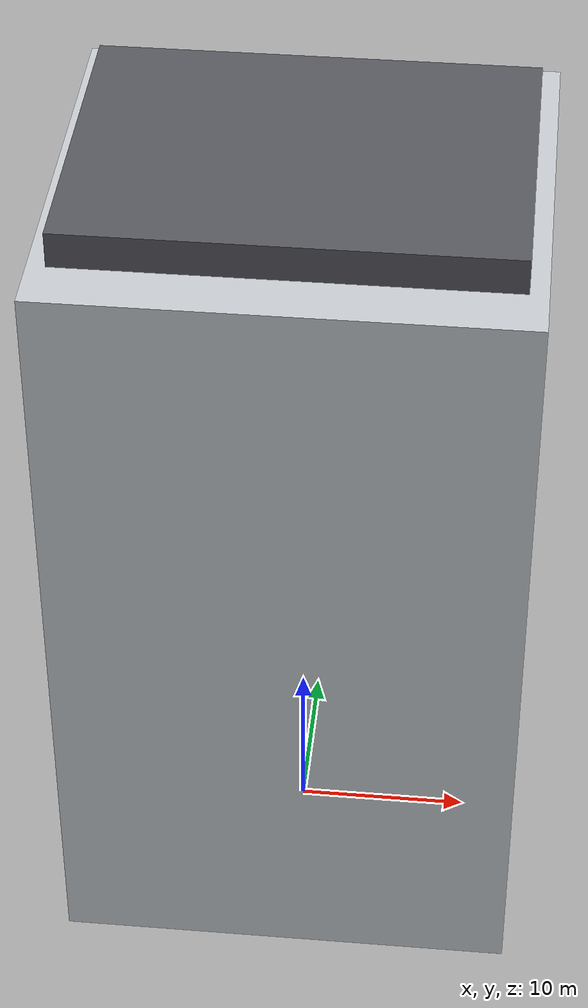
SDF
<?xml version="1.0" ?>
<sdf version="1.8">
  <model name="guanxin_prestige_center">
    <static>true</static>
    <link name="prestige_link">
      <collision name="tower_col"><pose>0 0 23.0 0 0 0</pose><geometry><box><size>26.0 24.0 46.0</size></box></geometry></collision>
      <visual name="tower_vis"><pose>0 0 23.0 0 0 0</pose><geometry><box><size>26.0 24.0 46.0</size></box></geometry><material><ambient>0.74 0.75 0.76 1</ambient><diffuse>0.80 0.82 0.84 1</diffuse></material></visual>
      <visual name="glass_curtain"><pose>0 14.1 23.0 0 0 0</pose><geometry><box><size>24.0 0.2 42.0</size></box></geometry><material><ambient>0.15 0.25 0.35 0.92</ambient><diffuse>0.20 0.35 0.50 0.92</diffuse><specular>0.95 0.98 1.0 1</specular></material></visual>
      <visual name="retail_arcade"><pose>0 13.0 0.08 0 0 0</pose><geometry><box><size>24.0 3.2 0.02</size></box></geometry><material><ambient>0.62 0.62 0.62 1</ambient><diffuse>0.70 0.70 0.70 1</diffuse></material></visual>
      <visual name="med_fascia"><pose>0 14.2 4.5 0 0 0</pose><geometry><box><size>22.0 0.15 1.5</size></box></geometry><material><ambient>0.10 0.40 0.55 1</ambient><diffuse>0.15 0.55 0.75 1</diffuse><emissive>0.08 0.25 0.35 1</emissive></material></visual>
      <visual name="roof_top"><pose>0 0 47.0 0 0 0</pose><geometry><box><size>24.0 18.0 2.0</size></box></geometry><material><ambient>0.30 0.30 0.32 1</ambient><diffuse>0.35 0.35 0.38 1</diffuse></material></visual>
    </link>
  </model>
</sdf>
